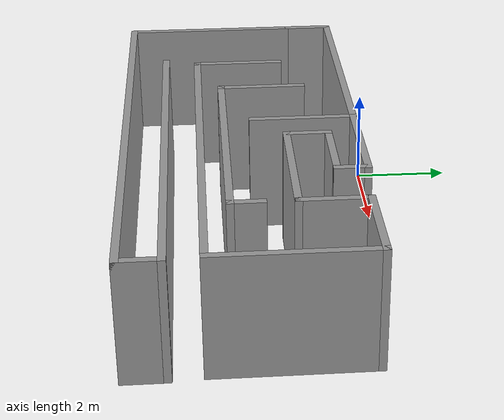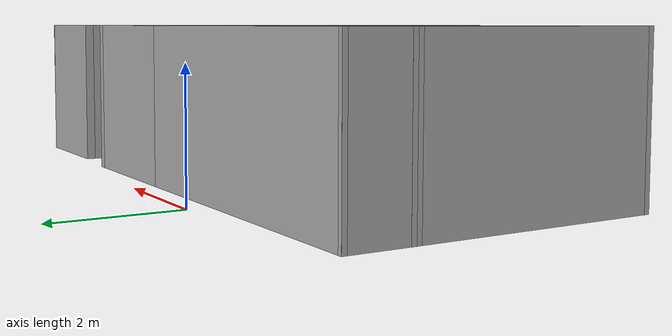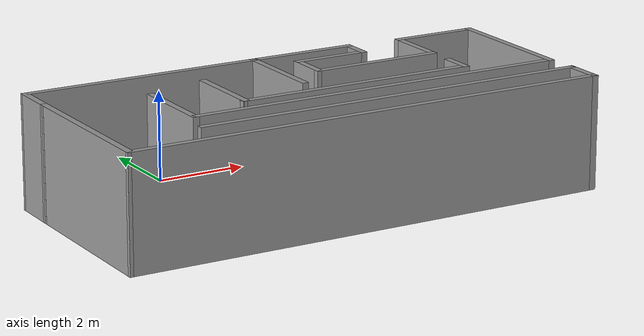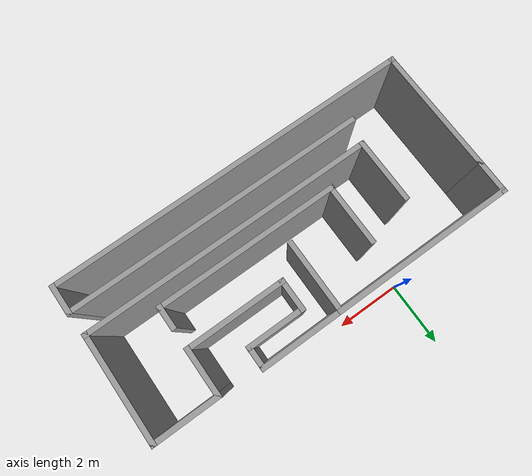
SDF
<?xml version='1.0'?>
<sdf version='1.7'>
  <model name='walls'>
    <pose>2.15301 -2.60254 0 0 -0 0</pose>
    <link name='Wall_0'>
      <collision name='Wall_0_Collision'>
        <geometry>
          <box>
            <size>2 0.15 2.5</size>
          </box>
        </geometry>
        <pose>0 0 1.25 0 -0 0</pose>
      </collision>
      <visual name='Wall_0_Visual'>
        <pose>0 0 1.25 0 -0 0</pose>
        <geometry>
          <box>
            <size>2 0.15 2.5</size>
          </box>
        </geometry>
        <material>
          <script>
            <uri>file://media/materials/scripts/gazebo.material</uri>
            <name>Gazebo/Grey</name>
          </script>
          <ambient>1 1 1 1</ambient>
        </material>
        <meta>
          <layer>0</layer>
        </meta>
      </visual>
      <pose>-3.22301 -0.102463 0 0 -0 -1.5708</pose>
    </link>
    <link name='Wall_1'>
      <collision name='Wall_1_Collision'>
        <geometry>
          <box>
            <size>8.75 0.15 2.5</size>
          </box>
        </geometry>
        <pose>0 0 1.25 0 -0 0</pose>
      </collision>
      <visual name='Wall_1_Visual'>
        <pose>0 0 1.25 0 -0 0</pose>
        <geometry>
          <box>
            <size>8.75 0.15 2.5</size>
          </box>
        </geometry>
        <material>
          <script>
            <uri>file://media/materials/scripts/gazebo.material</uri>
            <name>Gazebo/Grey</name>
          </script>
          <ambient>1 1 1 1</ambient>
        </material>
        <meta>
          <layer>0</layer>
        </meta>
      </visual>
      <pose>1.07699 -1.02746 0 0 -0 0</pose>
    </link>
    <link name='Wall_10'>
      <collision name='Wall_10_Collision'>
        <geometry>
          <box>
            <size>2.25 0.15 2.5</size>
          </box>
        </geometry>
        <pose>0 0 1.25 0 -0 0</pose>
      </collision>
      <visual name='Wall_10_Visual'>
        <pose>0 0 1.25 0 -0 0</pose>
        <geometry>
          <box>
            <size>2.25 0.15 2.5</size>
          </box>
        </geometry>
        <material>
          <script>
            <uri>file://media/materials/scripts/gazebo.material</uri>
            <name>Gazebo/Grey</name>
          </script>
          <ambient>1 1 1 1</ambient>
        </material>
        <meta>
          <layer>0</layer>
        </meta>
      </visual>
      <pose>-0.07301 1.12254 0 0 -0 -1.5708</pose>
    </link>
    <link name='Wall_12'>
      <collision name='Wall_12_Collision'>
        <geometry>
          <box>
            <size>0.75 0.15 2.5</size>
          </box>
        </geometry>
        <pose>0 0 1.25 0 -0 0</pose>
      </collision>
      <visual name='Wall_12_Visual'>
        <pose>0 0 1.25 0 -0 0</pose>
        <geometry>
          <box>
            <size>0.75 0.15 2.5</size>
          </box>
        </geometry>
        <material>
          <script>
            <uri>file://media/materials/scripts/gazebo.material</uri>
            <name>Gazebo/Grey</name>
          </script>
          <ambient>1 1 1 1</ambient>
        </material>
        <meta>
          <layer>0</layer>
        </meta>
      </visual>
      <pose>3.52699 -0.227463 0 0 -0 -1.5708</pose>
    </link>
    <link name='Wall_13'>
      <collision name='Wall_13_Collision'>
        <geometry>
          <box>
            <size>5.4805 0.15 2.5</size>
          </box>
        </geometry>
        <pose>0 0 1.25 0 -0 0</pose>
      </collision>
      <visual name='Wall_13_Visual'>
        <pose>0 0 1.25 0 -0 0</pose>
        <geometry>
          <box>
            <size>5.4805 0.15 2.5</size>
          </box>
        </geometry>
        <material>
          <script>
            <uri>file://media/materials/scripts/gazebo.material</uri>
            <name>Gazebo/Grey</name>
          </script>
          <ambient>1 1 1 1</ambient>
        </material>
        <meta>
          <layer>0</layer>
        </meta>
      </visual>
      <pose>0.86174 -0.527463 0 0 -0 3.14159</pose>
    </link>
    <link name='Wall_14'>
      <collision name='Wall_14_Collision'>
        <geometry>
          <box>
            <size>1.90744 0.15 2.5</size>
          </box>
        </geometry>
        <pose>0 0 1.25 0 -0 0</pose>
      </collision>
      <visual name='Wall_14_Visual'>
        <pose>0 0 1.25 0 -0 0</pose>
        <geometry>
          <box>
            <size>1.90744 0.15 2.5</size>
          </box>
        </geometry>
        <material>
          <script>
            <uri>file://media/materials/scripts/gazebo.material</uri>
            <name>Gazebo/Grey</name>
          </script>
          <ambient>1 1 1 1</ambient>
        </material>
        <meta>
          <layer>0</layer>
        </meta>
      </visual>
      <pose>-1.79385 0.351254 0 0 -0 1.57289</pose>
    </link>
    <link name='Wall_16'>
      <collision name='Wall_16_Collision'>
        <geometry>
          <box>
            <size>3.90744 0.15 2.5</size>
          </box>
        </geometry>
        <pose>0 0 1.25 0 -0 0</pose>
      </collision>
      <visual name='Wall_16_Visual'>
        <pose>0 0 1.25 0 -0 0</pose>
        <geometry>
          <box>
            <size>3.90744 0.15 2.5</size>
          </box>
        </geometry>
        <material>
          <script>
            <uri>file://media/materials/scripts/gazebo.material</uri>
            <name>Gazebo/Grey</name>
          </script>
          <ambient>1 1 1 1</ambient>
        </material>
        <meta>
          <layer>0</layer>
        </meta>
      </visual>
      <pose>-5.42485 -0.648746 0 0 -0 -1.56981</pose>
    </link>
    <link name='Wall_17'>
      <collision name='Wall_17_Collision'>
        <geometry>
          <box>
            <size>11 0.15 2.5</size>
          </box>
        </geometry>
        <pose>0 0 1.25 0 -0 0</pose>
      </collision>
      <visual name='Wall_17_Visual'>
        <pose>0 0 1.25 0 -0 0</pose>
        <geometry>
          <box>
            <size>11 0.15 2.5</size>
          </box>
        </geometry>
        <material>
          <script>
            <uri>file://media/materials/scripts/gazebo.material</uri>
            <name>Gazebo/Grey</name>
          </script>
          <ambient>1 1 1 1</ambient>
        </material>
        <meta>
          <layer>0</layer>
        </meta>
      </visual>
      <pose>0.00199 -2.52746 0 0 -0 0</pose>
    </link>
    <link name='Wall_18'>
      <collision name='Wall_18_Collision'>
        <geometry>
          <box>
            <size>0.94 0.15 2.5</size>
          </box>
        </geometry>
        <pose>0 0 1.25 0 -0 0</pose>
      </collision>
      <visual name='Wall_18_Visual'>
        <pose>0 0 1.25 0 -0 0</pose>
        <geometry>
          <box>
            <size>0.94 0.15 2.5</size>
          </box>
        </geometry>
        <material>
          <script>
            <uri>file://media/materials/scripts/gazebo.material</uri>
            <name>Gazebo/Grey</name>
          </script>
          <ambient>1 1 1 1</ambient>
        </material>
        <meta>
          <layer>0</layer>
        </meta>
      </visual>
      <pose>5.42699 -2.13246 0 0 -0 1.5708</pose>
    </link>
    <link name='Wall_19'>
      <collision name='Wall_19_Collision'>
        <geometry>
          <box>
            <size>9 0.15 2.5</size>
          </box>
        </geometry>
        <pose>0 0 1.25 0 -0 0</pose>
      </collision>
      <visual name='Wall_19_Visual'>
        <pose>0 0 1.25 0 -0 0</pose>
        <geometry>
          <box>
            <size>9 0.15 2.5</size>
          </box>
        </geometry>
        <material>
          <script>
            <uri>file://media/materials/scripts/gazebo.material</uri>
            <name>Gazebo/Grey</name>
          </script>
          <ambient>1 1 1 1</ambient>
        </material>
        <meta>
          <layer>0</layer>
        </meta>
      </visual>
      <pose>1.00199 -1.73746 0 0 -0 3.14159</pose>
    </link>
    <link name='Wall_2'>
      <collision name='Wall_2_Collision'>
        <geometry>
          <box>
            <size>3.25 0.15 2.5</size>
          </box>
        </geometry>
        <pose>0 0 1.25 0 -0 0</pose>
      </collision>
      <visual name='Wall_2_Visual'>
        <pose>0 0 1.25 0 -0 0</pose>
        <geometry>
          <box>
            <size>3.25 0.15 2.5</size>
          </box>
        </geometry>
        <material>
          <script>
            <uri>file://media/materials/scripts/gazebo.material</uri>
            <name>Gazebo/Grey</name>
          </script>
          <ambient>1 1 1 1</ambient>
        </material>
        <meta>
          <layer>0</layer>
        </meta>
      </visual>
      <pose>5.37699 0.522537 0 0 -0 1.5708</pose>
    </link>
    <link name='Wall_21'>
      <collision name='Wall_21_Collision'>
        <geometry>
          <box>
            <size>5.5 0.15 2.5</size>
          </box>
        </geometry>
        <pose>0 0 1.25 0 -0 0</pose>
      </collision>
      <visual name='Wall_21_Visual'>
        <pose>0 0 1.25 0 -0 0</pose>
        <geometry>
          <box>
            <size>5.5 0.15 2.5</size>
          </box>
        </geometry>
        <material>
          <script>
            <uri>file://media/materials/scripts/gazebo.material</uri>
            <name>Gazebo/Grey</name>
          </script>
          <ambient>1 1 1 1</ambient>
        </material>
        <meta>
          <layer>0</layer>
        </meta>
      </visual>
      <pose>-2.74801 2.17254 0 0 -0 3.14159</pose>
    </link>
    <link name='Wall_22'>
      <collision name='Wall_22_Collision'>
        <geometry>
          <box>
            <size>1.09257 0.15 2.5</size>
          </box>
        </geometry>
        <pose>0 0 1.25 0 -0 0</pose>
      </collision>
      <visual name='Wall_22_Visual'>
        <pose>0 0 1.25 0 -0 0</pose>
        <geometry>
          <box>
            <size>1.09257 0.15 2.5</size>
          </box>
        </geometry>
        <material>
          <script>
            <uri>file://media/materials/scripts/gazebo.material</uri>
            <name>Gazebo/Grey</name>
          </script>
          <ambient>1 1 1 1</ambient>
        </material>
        <meta>
          <layer>0</layer>
        </meta>
      </visual>
      <pose>-5.42485 1.70125 0 0 -0 -1.57471</pose>
    </link>
    <link name='Wall_3'>
      <collision name='Wall_3_Collision'>
        <geometry>
          <box>
            <size>2 0.15 2.5</size>
          </box>
        </geometry>
        <pose>0 0 1.25 0 -0 0</pose>
      </collision>
      <visual name='Wall_3_Visual'>
        <pose>0 0 1.25 0 -0 0</pose>
        <geometry>
          <box>
            <size>2 0.15 2.5</size>
          </box>
        </geometry>
        <material>
          <script>
            <uri>file://media/materials/scripts/gazebo.material</uri>
            <name>Gazebo/Grey</name>
          </script>
          <ambient>1 1 1 1</ambient>
        </material>
        <meta>
          <layer>0</layer>
        </meta>
      </visual>
      <pose>4.45199 2.07254 0 0 -0 3.14159</pose>
    </link>
    <link name='Wall_4'>
      <collision name='Wall_4_Collision'>
        <geometry>
          <box>
            <size>1.5 0.15 2.5</size>
          </box>
        </geometry>
        <pose>0 0 1.25 0 -0 0</pose>
      </collision>
      <visual name='Wall_4_Visual'>
        <pose>0 0 1.25 0 -0 0</pose>
        <geometry>
          <box>
            <size>1.5 0.15 2.5</size>
          </box>
        </geometry>
        <material>
          <script>
            <uri>file://media/materials/scripts/gazebo.material</uri>
            <name>Gazebo/Grey</name>
          </script>
          <ambient>1 1 1 1</ambient>
        </material>
        <meta>
          <layer>0</layer>
        </meta>
      </visual>
      <pose>3.52699 1.39754 0 0 -0 -1.5708</pose>
    </link>
    <link name='Wall_5'>
      <collision name='Wall_5_Collision'>
        <geometry>
          <box>
            <size>3 0.15 2.5</size>
          </box>
        </geometry>
        <pose>0 0 1.25 0 -0 0</pose>
      </collision>
      <visual name='Wall_5_Visual'>
        <pose>0 0 1.25 0 -0 0</pose>
        <geometry>
          <box>
            <size>3 0.15 2.5</size>
          </box>
        </geometry>
        <material>
          <script>
            <uri>file://media/materials/scripts/gazebo.material</uri>
            <name>Gazebo/Grey</name>
          </script>
          <ambient>1 1 1 1</ambient>
        </material>
        <meta>
          <layer>0</layer>
        </meta>
      </visual>
      <pose>2.10199 0.722537 0 0 -0 3.14159</pose>
    </link>
    <link name='Wall_6'>
      <collision name='Wall_6_Collision'>
        <geometry>
          <box>
            <size>1 0.15 2.5</size>
          </box>
        </geometry>
        <pose>0 0 1.25 0 -0 0</pose>
      </collision>
      <visual name='Wall_6_Visual'>
        <pose>0 0 1.25 0 -0 0</pose>
        <geometry>
          <box>
            <size>1 0.15 2.5</size>
          </box>
        </geometry>
        <material>
          <script>
            <uri>file://media/materials/scripts/gazebo.material</uri>
            <name>Gazebo/Grey</name>
          </script>
          <ambient>1 1 1 1</ambient>
        </material>
        <meta>
          <layer>0</layer>
        </meta>
      </visual>
      <pose>0.67699 1.14754 0 0 -0 1.5708</pose>
    </link>
    <link name='Wall_7'>
      <collision name='Wall_7_Collision'>
        <geometry>
          <box>
            <size>1.75 0.15 2.5</size>
          </box>
        </geometry>
        <pose>0 0 1.25 0 -0 0</pose>
      </collision>
      <visual name='Wall_7_Visual'>
        <pose>0 0 1.25 0 -0 0</pose>
        <geometry>
          <box>
            <size>1.75 0.15 2.5</size>
          </box>
        </geometry>
        <material>
          <script>
            <uri>file://media/materials/scripts/gazebo.material</uri>
            <name>Gazebo/Grey</name>
          </script>
          <ambient>1 1 1 1</ambient>
        </material>
        <meta>
          <layer>0</layer>
        </meta>
      </visual>
      <pose>1.47699 1.57254 0 0 -0 0</pose>
    </link>
    <link name='Wall_8'>
      <collision name='Wall_8_Collision'>
        <geometry>
          <box>
            <size>0.75 0.15 2.5</size>
          </box>
        </geometry>
        <pose>0 0 1.25 0 -0 0</pose>
      </collision>
      <visual name='Wall_8_Visual'>
        <pose>0 0 1.25 0 -0 0</pose>
        <geometry>
          <box>
            <size>0.75 0.15 2.5</size>
          </box>
        </geometry>
        <material>
          <script>
            <uri>file://media/materials/scripts/gazebo.material</uri>
            <name>Gazebo/Grey</name>
          </script>
          <ambient>1 1 1 1</ambient>
        </material>
        <meta>
          <layer>0</layer>
        </meta>
      </visual>
      <pose>2.27699 1.87254 0 0 -0 1.5708</pose>
    </link>
    <link name='Wall_9'>
      <collision name='Wall_9_Collision'>
        <geometry>
          <box>
            <size>2.5 0.15 2.5</size>
          </box>
        </geometry>
        <pose>0 0 1.25 0 -0 0</pose>
      </collision>
      <visual name='Wall_9_Visual'>
        <pose>0 0 1.25 0 -0 0</pose>
        <geometry>
          <box>
            <size>2.5 0.15 2.5</size>
          </box>
        </geometry>
        <material>
          <script>
            <uri>file://media/materials/scripts/gazebo.material</uri>
            <name>Gazebo/Grey</name>
          </script>
          <ambient>1 1 1 1</ambient>
        </material>
        <meta>
          <layer>0</layer>
        </meta>
      </visual>
      <pose>1.10199 2.17254 0 0 -0 3.14159</pose>
    </link>
    <static>1</static>
  </model>
</sdf>
